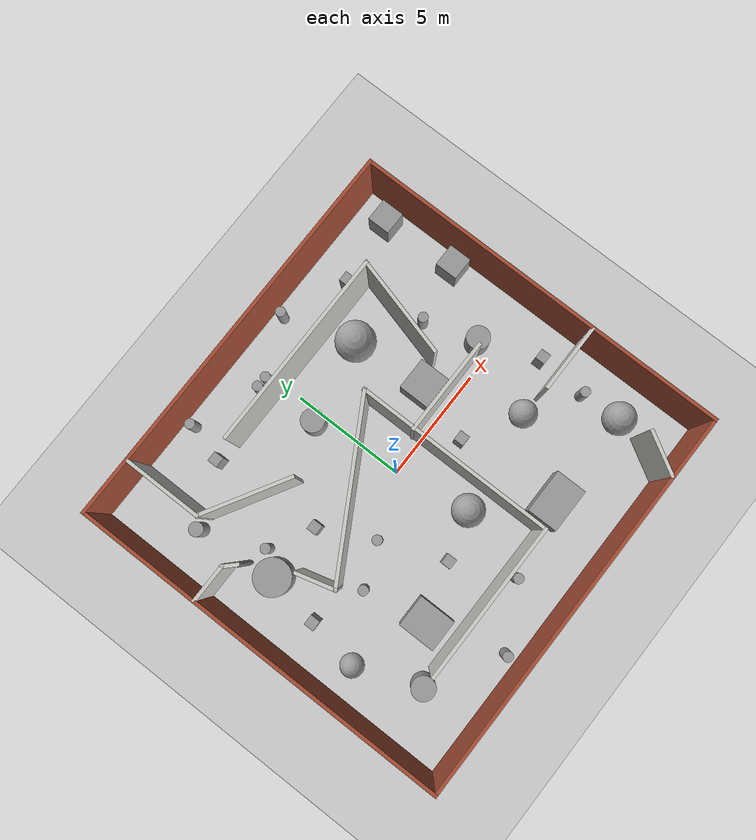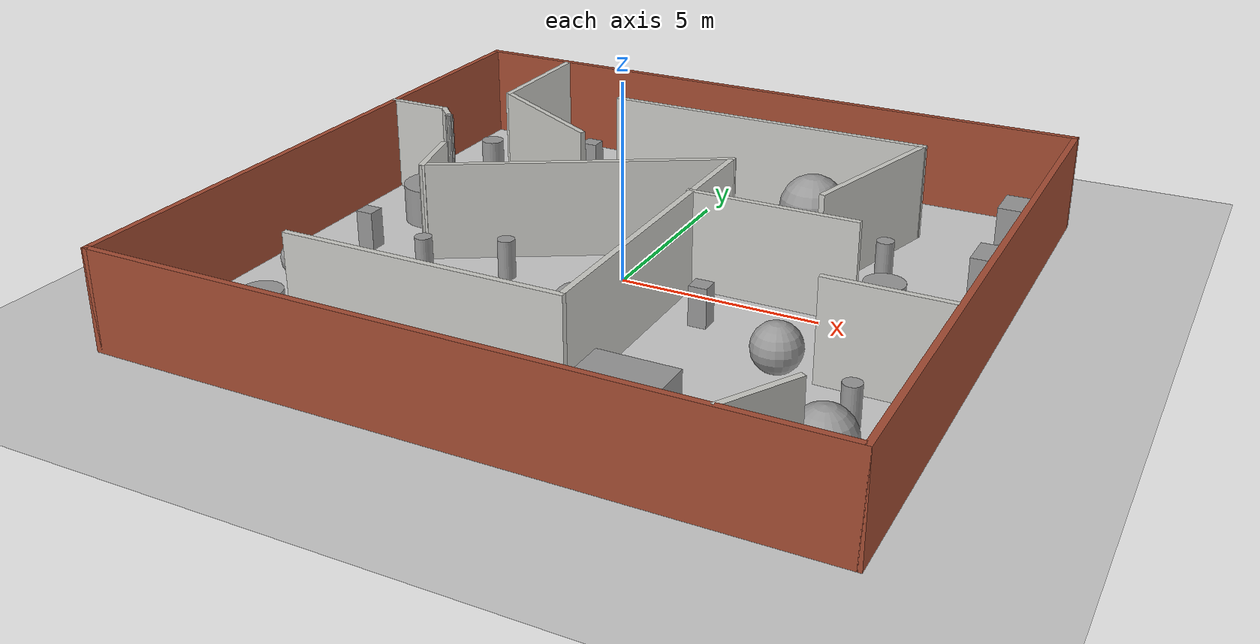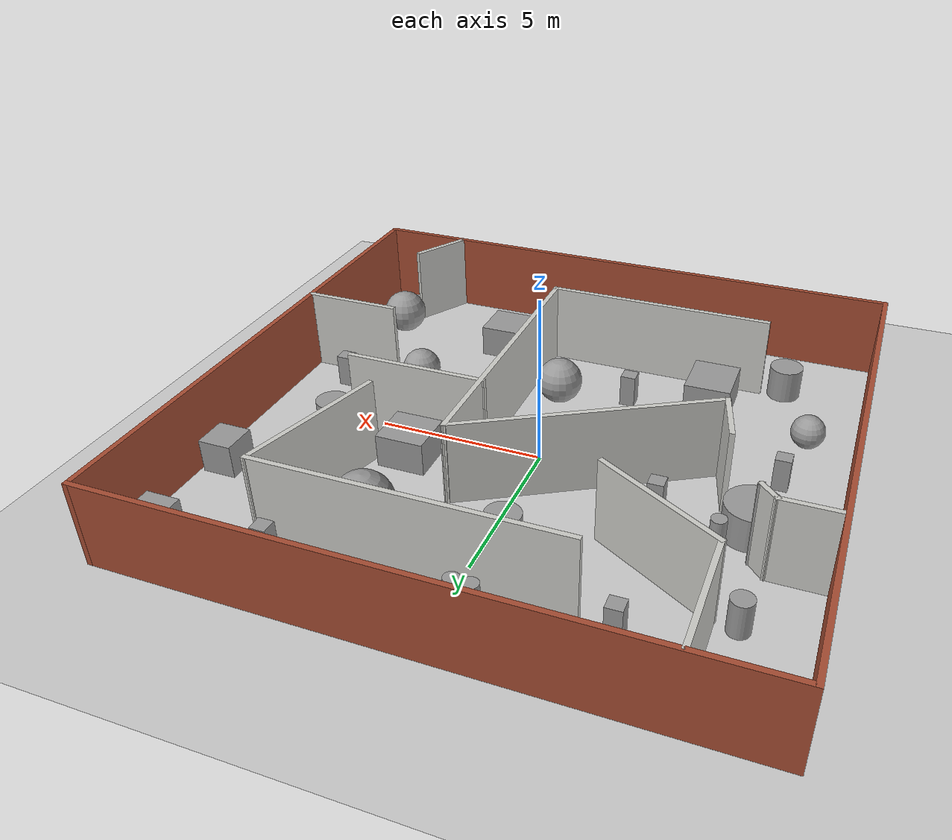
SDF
<sdf version="1.7">
 <world name="default">
  <light name="sun" type="directional">
   <pose>0 0 10 0 -0 0</pose>
   <diffuse>0.8 0.8 0.8 1</diffuse>
   <specular>0.2 0.2 0.2 1</specular>
   <attenuation>
    <range>1000</range>
    <constant>0.9</constant>
    <linear>0.01</linear>
    <quadratic>0.001</quadratic>
   </attenuation>
   <direction>-0.5 0.1 -0.9</direction>
   <spot><inner_angle>0</inner_angle><outer_angle>0</outer_angle><falloff>0</falloff></spot>
  </light>
  <model name="ground_plane">
   <static>1</static>
   <link name="link">
    <collision name="collision">
     <geometry><plane><normal>0 0 1</normal><size>100 100</size></plane></geometry>
     <surface>
      <contact><collide_bitmask>65535</collide_bitmask></contact>
      <friction><ode><mu>100</mu><mu2>50</mu2></ode></friction>
     </surface>
    </collision>
    <visual name="visual">
     <cast_shadows>0</cast_shadows>
     <geometry><plane><normal>0 0 1</normal><size>100 100</size></plane></geometry>
     <material>
      <script><uri>file://media/materials/scripts/gazebo.material</uri><name>Gazebo/Grey</name></script>
     </material>
    </visual>
   </link>
  </model>
  <gravity>0 0 -9.8</gravity>
  <magnetic_field>6e-06 2.3e-05 -4.2e-05</magnetic_field>
  <atmosphere type="adiabatic"/>
  <physics type="ode">
   <max_step_size>0.001</max_step_size>
   <real_time_factor>1</real_time_factor>
   <real_time_update_rate>1000</real_time_update_rate>
  </physics>
  <scene><ambient>0.4 0.4 0.4 1</ambient><background>0.7 0.7 0.7 1</background><shadows>1</shadows></scene>
  <spherical_coordinates>
   <surface_model>EARTH_WGS84</surface_model>
   <latitude_deg>0</latitude_deg>
   <longitude_deg>0</longitude_deg>
   <elevation>0</elevation>
   <heading_deg>0</heading_deg>
  </spherical_coordinates>
  <model name="maze">
   <pose>0.17089 -0.139064 0 0 -0 0</pose>
   <link name="Wall_22">
    <collision name="Wall_22_Collision">
     <geometry><box><size>16.75 0.15 2.5</size></box></geometry>
     <pose>0 0 1.25 0 -0 0</pose>
    </collision>
    <visual name="Wall_22_Visual">
     <pose>0 0 1.25 0 -0 0</pose>
     <geometry><box><size>16.75 0.15 2.5</size></box></geometry>
     <material>
      <script><uri>file://media/materials/scripts/gazebo.material</uri><name>Gazebo/Bricks</name></script>
      <ambient>1 1 1 1</ambient>
     </material>
     <meta><layer>0</layer></meta>
    </visual>
    <pose>-8.675 0 0 0 -0 -1.5708</pose>
   </link>
   <link name="Wall_23">
    <collision name="Wall_23_Collision">
     <geometry><box><size>17.5 0.15 2.5</size></box></geometry>
     <pose>0 0 1.25 0 -0 0</pose>
    </collision>
    <visual name="Wall_23_Visual">
     <pose>0 0 1.25 0 -0 0</pose>
     <geometry><box><size>17.5 0.15 2.5</size></box></geometry>
     <material>
      <script><uri>file://media/materials/scripts/gazebo.material</uri><name>Gazebo/Bricks</name></script>
      <ambient>1 1 1 1</ambient>
     </material>
     <meta><layer>0</layer></meta>
    </visual>
    <pose>-0 -8.3 0 0 -0 0</pose>
   </link>
   <link name="Wall_24">
    <collision name="Wall_24_Collision">
     <geometry><box><size>16.75 0.15 2.5</size></box></geometry>
     <pose>0 0 1.25 0 -0 0</pose>
    </collision>
    <visual name="Wall_24_Visual">
     <pose>0 0 1.25 0 -0 0</pose>
     <geometry><box><size>16.75 0.15 2.5</size></box></geometry>
     <material>
      <script><uri>file://media/materials/scripts/gazebo.material</uri><name>Gazebo/Bricks</name></script>
      <ambient>1 1 1 1</ambient>
     </material>
     <meta><layer>0</layer></meta>
    </visual>
    <pose>8.675 0 0 0 -0 1.5708</pose>
   </link>
   <link name="Wall_25">
    <collision name="Wall_25_Collision">
     <geometry><box><size>17.5 0.15 2.5</size></box></geometry>
     <pose>0 0 1.25 0 -0 0</pose>
    </collision>
    <visual name="Wall_25_Visual">
     <pose>0 0 1.25 0 -0 0</pose>
     <geometry><box><size>17.5 0.15 2.5</size></box></geometry>
     <material>
      <script><uri>file://media/materials/scripts/gazebo.material</uri><name>Gazebo/Bricks</name></script>
      <ambient>1 1 1 1</ambient>
     </material>
     <meta><layer>0</layer></meta>
    </visual>
    <pose>-0 8.3 0 0 -0 3.14159</pose>
   </link>
   <link name="Wall_27">
    <collision name="Wall_27_Collision">
     <geometry><box><size>3.5 0.15 2.5</size></box></geometry>
     <pose>0 0 1.25 0 -0 0</pose>
    </collision>
    <visual name="Wall_27_Visual">
     <pose>0 0 1.25 0 -0 0</pose>
     <geometry><box><size>3.5 0.15 2.5</size></box></geometry>
     <material>
      <script><uri>file://media/materials/scripts/gazebo.material</uri><name>Gazebo/CeilingTiled</name></script>
      <ambient>1 1 1 1</ambient>
     </material>
     <meta><layer>0</layer></meta>
    </visual>
    <pose>-6.16926 6.57143 0 0 -0 -1.5708</pose>
   </link>
   <link name="Wall_32">
    <collision name="Wall_32_Collision">
     <geometry><box><size>7.75 0.15 2.5</size></box></geometry>
     <pose>0 0 1.25 0 -0 0</pose>
    </collision>
    <visual name="Wall_32_Visual">
     <pose>0 0 1.25 0 -0 0</pose>
     <geometry><box><size>7.75 0.15 2.5</size></box></geometry>
     <material>
      <script><uri>file://media/materials/scripts/gazebo.material</uri><name>Gazebo/CeilingTiled</name></script>
      <ambient>1 1 1 1</ambient>
     </material>
     <meta><layer>0</layer></meta>
    </visual>
    <pose>-1.85377 1.00427 0 0 -0 -2.61799</pose>
   </link>
   <link name="Wall_39">
    <collision name="Wall_39_Collision">
     <geometry><box><size>8.75 0.15 2.5</size></box></geometry>
     <pose>0 0 1.25 0 -0 0</pose>
    </collision>
    <visual name="Wall_39_Visual">
     <pose>0 0 1.25 0 -0 0</pose>
     <geometry><box><size>8.75 0.15 2.5</size></box></geometry>
     <material>
      <script><uri>file://media/materials/scripts/gazebo.material</uri><name>Gazebo/CeilingTiled</name></script>
      <ambient>1 1 1 1</ambient>
     </material>
     <meta><layer>0</layer></meta>
    </visual>
    <pose>1.08014 5.91388 0 0 -0 0</pose>
   </link>
   <link name="Wall_41">
    <collision name="Wall_41_Collision">
     <geometry><box><size>4 0.15 2.5</size></box></geometry>
     <pose>0 0 1.25 0 -0 0</pose>
    </collision>
    <visual name="Wall_41_Visual">
     <pose>0 0 1.25 0 -0 0</pose>
     <geometry><box><size>4 0.15 2.5</size></box></geometry>
     <material>
      <script><uri>file://media/materials/scripts/gazebo.material</uri><name>Gazebo/CeilingTiled</name></script>
      <ambient>1 1 1 1</ambient>
     </material>
     <meta><layer>0</layer></meta>
    </visual>
    <pose>-4.50216 3.93393 0 0 -0 -0.523599</pose>
   </link>
   <link name="Wall_44">
    <collision name="Wall_44_Collision">
     <geometry><box><size>8.75 0.15 2.5</size></box></geometry>
     <pose>0 0 1.25 0 -0 0</pose>
    </collision>
    <visual name="Wall_44_Visual">
     <pose>0 0 1.25 0 -0 0</pose>
     <geometry><box><size>8.75 0.15 2.5</size></box></geometry>
     <material>
      <script><uri>file://media/materials/scripts/gazebo.material</uri><name>Gazebo/CeilingTiled</name></script>
      <ambient>1 1 1 1</ambient>
     </material>
     <meta><layer>0</layer></meta>
    </visual>
    <pose>1.43713 -1.39573 0 0 -0 -1.5708</pose>
   </link>
   <link name="Wall_45">
    <collision name="Wall_45_Collision">
     <geometry><box><size>7 0.15 2.5</size></box></geometry>
     <pose>0 0 1.25 0 -0 0</pose>
    </collision>
    <visual name="Wall_45_Visual">
     <pose>0 0 1.25 0 -0 0</pose>
     <geometry><box><size>7 0.15 2.5</size></box></geometry>
     <material>
      <script><uri>file://media/materials/scripts/gazebo.material</uri><name>Gazebo/CeilingTiled</name></script>
      <ambient>1 1 1 1</ambient>
     </material>
     <meta><layer>0</layer></meta>
    </visual>
    <pose>-1.98787 -5.69573 0 0 -0 3.14159</pose>
   </link>
   <link name="Wall_47">
    <collision name="Wall_47_Collision">
     <geometry><box><size>1.75 0.15 2.5</size></box></geometry>
     <pose>0 0 1.25 0 -0 0</pose>
    </collision>
    <visual name="Wall_47_Visual">
     <pose>0 0 1.25 0 -0 0</pose>
     <geometry><box><size>1.75 0.15 2.5</size></box></geometry>
     <material>
      <script><uri>file://media/materials/scripts/gazebo.material</uri><name>Gazebo/CeilingTiled</name></script>
      <ambient>1 1 1 1</ambient>
     </material>
     <meta><layer>0</layer></meta>
    </visual>
    <pose>-5.35172 -0.122989 0 0 -0 1.8326</pose>
   </link>
   <link name="Wall_49">
    <collision name="Wall_49_Collision">
     <geometry><box><size>1.75 0.15 2.5</size></box></geometry>
     <pose>0 0 1.25 0 -0 0</pose>
    </collision>
    <visual name="Wall_49_Visual">
     <pose>0 0 1.25 0 -0 0</pose>
     <geometry><box><size>1.75 0.15 2.5</size></box></geometry>
     <material>
      <script><uri>file://media/materials/scripts/gazebo.material</uri><name>Gazebo/CeilingTiled</name></script>
      <ambient>1 1 1 1</ambient>
     </material>
     <meta><layer>0</layer></meta>
    </visual>
    <pose>-7.86107 2.96653 0 0 -0 0</pose>
   </link>
   <link name="Wall_50">
    <collision name="Wall_50_Collision">
     <geometry><box><size>0.75 0.15 2.5</size></box></geometry>
     <pose>0 0 1.25 0 -0 0</pose>
    </collision>
    <visual name="Wall_50_Visual">
     <pose>0 0 1.25 0 -0 0</pose>
     <geometry><box><size>0.75 0.15 2.5</size></box></geometry>
     <material>
      <script><uri>file://media/materials/scripts/gazebo.material</uri><name>Gazebo/CeilingTiled</name></script>
      <ambient>1 1 1 1</ambient>
     </material>
     <meta><layer>0</layer></meta>
    </visual>
    <pose>-6.84893 2.75439 0 0 -0 -0.785398</pose>
   </link>
   <link name="Wall_51">
    <collision name="Wall_51_Collision">
     <geometry><box><size>0.16 0.15 2.5</size></box></geometry>
     <pose>0 0 1.25 0 -0 0</pose>
    </collision>
    <visual name="Wall_51_Visual">
     <pose>0 0 1.25 0 -0 0</pose>
     <geometry><box><size>0.16 0.15 2.5</size></box></geometry>
     <material>
      <script><uri>file://media/materials/scripts/gazebo.material</uri><name>Gazebo/Grey</name></script>
      <ambient>0 0 0 1</ambient>
     </material>
     <meta><layer>0</layer></meta>
    </visual>
    <pose>-6.6318 2.54226 0 0 -0 0</pose>
   </link>
   <link name="Wall_54">
    <collision name="Wall_54_Collision">
     <geometry><box><size>3 0.15 2.5</size></box></geometry>
     <pose>0 0 1.25 0 -0 0</pose>
    </collision>
    <visual name="Wall_54_Visual">
     <pose>0 0 1.25 0 -0 0</pose>
     <geometry><box><size>3 0.15 2.5</size></box></geometry>
     <material>
      <script><uri>file://media/materials/scripts/gazebo.material</uri><name>Gazebo/CeilingTiled</name></script>
      <ambient>1 1 1 1</ambient>
     </material>
     <meta><layer>0</layer></meta>
    </visual>
    <pose>7.20955 -2.53435 0 0 -0 3.14159</pose>
   </link>
   <link name="Wall_56">
    <collision name="Wall_56_Collision">
     <geometry><box><size>4.25 0.15 2.5</size></box></geometry>
     <pose>0 0 1.25 0 -0 0</pose>
    </collision>
    <visual name="Wall_56_Visual">
     <pose>0 0 1.25 0 -0 0</pose>
     <geometry><box><size>4.25 0.15 2.5</size></box></geometry>
     <material>
      <script><uri>file://media/materials/scripts/gazebo.material</uri><name>Gazebo/CeilingTiled</name></script>
      <ambient>1 1 1 1</ambient>
     </material>
     <meta><layer>0</layer></meta>
    </visual>
    <pose>3.44257 0.517046 0 0 -0 0</pose>
   </link>
   <link name="Wall_58">
    <collision name="Wall_58_Collision">
     <geometry><box><size>4.5 0.15 2.5</size></box></geometry>
     <pose>0 0 1.25 0 -0 0</pose>
    </collision>
    <visual name="Wall_58_Visual">
     <pose>0 0 1.25 0 -0 0</pose>
     <geometry><box><size>4.5 0.15 2.5</size></box></geometry>
     <material>
      <script><uri>file://media/materials/scripts/gazebo.material</uri><name>Gazebo/CeilingTiled</name></script>
      <ambient>1 1 1 1</ambient>
     </material>
     <meta><layer>0</layer></meta>
    </visual>
    <pose>4.81721 3.81299 0 0 -0 -1.8326</pose>
   </link>
   <link name="Wall_65">
    <collision name="Wall_65_Collision">
     <geometry><box><size>2 0.15 2.5</size></box></geometry>
     <pose>0 0 1.25 0 -0 0</pose>
    </collision>
    <visual name="Wall_65_Visual">
     <pose>0 0 1.25 0 -0 0</pose>
     <geometry><box><size>2 0.15 2.5</size></box></geometry>
     <material>
      <script><uri>file://media/materials/scripts/gazebo.material</uri><name>Gazebo/CeilingTiled</name></script>
      <ambient>1 1 1 1</ambient>
     </material>
     <meta><layer>0</layer></meta>
    </visual>
    <pose>6.39408 -7.4518 0 0 -0 1.0472</pose>
   </link>
   <static>1</static>
  </model>
  <model name="unit_cylinder">
   <pose>-6.26164 1.24907 0.499996 5e-06 5e-06 -6e-06</pose>
   <link name="link">
    <inertial>
     <mass>1</mass>
     <inertia><ixx>0.145833</ixx><ixy>0</ixy><ixz>0</ixz><iyy>0.145833</iyy><iyz>0</iyz><izz>0.125</izz></inertia>
    </inertial>
    <collision name="collision">
     <geometry><cylinder><radius>0.78674</radius><length>1</length></cylinder></geometry>
    </collision>
    <visual name="visual">
     <geometry><cylinder><radius>0.78674</radius><length>1</length></cylinder></geometry>
     <material>
      <script><name>Gazebo/Grey</name><uri>file://media/materials/scripts/gazebo.material</uri></script>
     </material>
    </visual>
   </link>
  </model>
  <model name="unit_cylinder_0">
   <pose>-2.61176 -1.0907 0.499994 0 -0 2e-06</pose>
   <link name="link">
    <inertial>
     <mass>1</mass>
     <inertia><ixx>0.145833</ixx><ixy>0</ixy><ixz>0</ixz><iyy>0.145833</iyy><iyz>0</iyz><izz>0.125</izz></inertia>
    </inertial>
    <collision name="collision">
     <geometry><cylinder><radius>0.216606</radius><length>1</length></cylinder></geometry>
    </collision>
    <visual name="visual">
     <geometry><cylinder><radius>0.216606</radius><length>1</length></cylinder></geometry>
     <material>
      <script><name>Gazebo/Grey</name><uri>file://media/materials/scripts/gazebo.material</uri></script>
     </material>
    </visual>
   </link>
  </model>
  <model name="unit_box_0">
   <pose>-3.95181 -4.59741 0.499994 -0 9e-06 -0.000152</pose>
   <link name="link">
    <inertial>
     <mass>1</mass>
     <inertia>
      <ixx>0.166667</ixx>
      <ixy>0</ixy>
      <ixz>0</ixz>
      <iyy>0.166667</iyy>
      <iyz>0</iyz>
      <izz>0.166667</izz>
     </inertia>
    </inertial>
    <collision name="collision"><geometry><box><size>1.40062 1.63389 1</size></box></geometry></collision>
    <visual name="visual">
     <geometry><box><size>1.40062 1.63389 1</size></box></geometry>
     <material>
      <script><name>Gazebo/Grey</name><uri>file://media/materials/scripts/gazebo.material</uri></script>
     </material>
    </visual>
   </link>
  </model>
  <model name="unit_sphere">
   <pose>0.540268 -3.21657 0.69319 0 -0 0</pose>
   <link name="link">
    <inertial>
     <mass>1</mass>
     <inertia><ixx>0.1</ixx><ixy>0</ixy><ixz>0</ixz><iyy>0.1</iyy><iyz>0</iyz><izz>0.1</izz></inertia>
    </inertial>
    <collision name="collision"><geometry><sphere><radius>0.69319</radius></sphere></geometry></collision>
    <visual name="visual">
     <geometry><sphere><radius>0.69319</radius></sphere></geometry>
     <material>
      <script><name>Gazebo/Grey</name><uri>file://media/materials/scripts/gazebo.material</uri></script>
     </material>
    </visual>
   </link>
  </model>
  <model name="unit_cylinder_1">
   <pose>-5.99181 -6.00243 0.499994 -3e-06 -1e-06 -0</pose>
   <link name="link">
    <inertial>
     <mass>1</mass>
     <inertia><ixx>0.145833</ixx><ixy>0</ixy><ixz>0</ixz><iyy>0.145833</iyy><iyz>0</iyz><izz>0.125</izz></inertia>
    </inertial>
    <collision name="collision">
     <geometry><cylinder><radius>0.5</radius><length>1</length></cylinder></geometry>
    </collision>
    <visual name="visual">
     <geometry><cylinder><radius>0.5</radius><length>1</length></cylinder></geometry>
     <material>
      <script><name>Gazebo/Grey</name><uri>file://media/materials/scripts/gazebo.material</uri></script>
     </material>
    </visual>
   </link>
  </model>
  <model name="unit_box">
   <pose>2.94901 -5.73381 0.5 0 -0 0</pose>
   <link name="link">
    <inertial>
     <mass>1</mass>
     <inertia>
      <ixx>0.166667</ixx>
      <ixy>0</ixy>
      <ixz>0</ixz>
      <iyy>0.166667</iyy>
      <iyz>0</iyz>
      <izz>0.166667</izz>
     </inertia>
    </inertial>
    <collision name="collision"><geometry><box><size>1.96762 1.36002 1</size></box></geometry></collision>
    <visual name="visual">
     <geometry><box><size>1.96762 1.36002 1</size></box></geometry>
     <material>
      <script><name>Gazebo/Grey</name><uri>file://media/materials/scripts/gazebo.material</uri></script>
     </material>
    </visual>
   </link>
  </model>
  <model name="unit_sphere_0">
   <pose>5.00015 -2.59977 0.590975 0 -0 0</pose>
   <link name="link">
    <inertial>
     <mass>1</mass>
     <inertia><ixx>0.1</ixx><ixy>0</ixy><ixz>0</ixz><iyy>0.1</iyy><iyz>0</iyz><izz>0.1</izz></inertia>
    </inertial>
    <collision name="collision"><geometry><sphere><radius>0.590975</radius></sphere></geometry></collision>
    <visual name="visual">
     <geometry><sphere><radius>0.590975</radius></sphere></geometry>
     <material>
      <script><name>Gazebo/Grey</name><uri>file://media/materials/scripts/gazebo.material</uri></script>
     </material>
    </visual>
   </link>
  </model>
  <model name="unit_box_1">
   <pose>3.46997 1.26692 0.499995 0 7e-06 -5.8e-05</pose>
   <link name="link">
    <inertial>
     <mass>1</mass>
     <inertia>
      <ixx>0.166667</ixx>
      <ixy>0</ixy>
      <ixz>0</ixz>
      <iyy>0.166667</iyy>
      <iyz>0</iyz>
      <izz>0.166667</izz>
     </inertia>
    </inertial>
    <collision name="collision"><geometry><box><size>1.43408 1.37249 1</size></box></geometry></collision>
    <visual name="visual">
     <geometry><box><size>1.43408 1.37249 1</size></box></geometry>
     <material>
      <script><name>Gazebo/Grey</name><uri>file://media/materials/scripts/gazebo.material</uri></script>
     </material>
    </visual>
   </link>
  </model>
  <model name="unit_cylinder_2">
   <pose>6.27871 0.698681 0.499996 3e-06 1e-06 -0</pose>
   <link name="link">
    <inertial>
     <mass>1</mass>
     <inertia><ixx>0.145833</ixx><ixy>0</ixy><ixz>0</ixz><iyy>0.145833</iyy><iyz>0</iyz><izz>0.125</izz></inertia>
    </inertial>
    <collision name="collision">
     <geometry><cylinder><radius>0.5</radius><length>1</length></cylinder></geometry>
    </collision>
    <visual name="visual">
     <geometry><cylinder><radius>0.5</radius><length>1</length></cylinder></geometry>
     <material>
      <script><name>Gazebo/Grey</name><uri>file://media/materials/scripts/gazebo.material</uri></script>
     </material>
    </visual>
   </link>
  </model>
  <model name="unit_box_2">
   <pose>8.14436 3.40744 0.499995 1e-05 -0 0</pose>
   <link name="link">
    <inertial>
     <mass>1</mass>
     <inertia>
      <ixx>0.166667</ixx>
      <ixy>0</ixy>
      <ixz>0</ixz>
      <iyy>0.166667</iyy>
      <iyz>0</iyz>
      <izz>0.166667</izz>
     </inertia>
    </inertial>
    <collision name="collision"><geometry><box><size>1 1 1</size></box></geometry></collision>
    <visual name="visual">
     <geometry><box><size>1 1 1</size></box></geometry>
     <material>
      <script><name>Gazebo/Grey</name><uri>file://media/materials/scripts/gazebo.material</uri></script>
     </material>
    </visual>
   </link>
  </model>
  <model name="unit_sphere_1">
   <pose>3.14299 4.52635 0.85364 0 -0 0</pose>
   <link name="link">
    <inertial>
     <mass>1</mass>
     <inertia><ixx>0.1</ixx><ixy>0</ixy><ixz>0</ixz><iyy>0.1</iyy><iyz>0</iyz><izz>0.1</izz></inertia>
    </inertial>
    <collision name="collision"><geometry><sphere><radius>0.85364</radius></sphere></geometry></collision>
    <visual name="visual">
     <geometry><sphere><radius>0.85364</radius></sphere></geometry>
     <material>
      <script><name>Gazebo/Grey</name><uri>file://media/materials/scripts/gazebo.material</uri></script>
     </material>
    </visual>
   </link>
  </model>
  <model name="unit_cylinder_0_clone">
   <pose>-4.48044 -1.86724 0.499991 0 -0 2e-06</pose>
   <link name="link">
    <inertial>
     <mass>1</mass>
     <inertia><ixx>0.145833</ixx><ixy>0</ixy><ixz>0</ixz><iyy>0.145833</iyy><iyz>0</iyz><izz>0.125</izz></inertia>
    </inertial>
    <collision name="collision">
     <geometry><cylinder><radius>0.216606</radius><length>1</length></cylinder></geometry>
    </collision>
    <visual name="visual">
     <geometry><cylinder><radius>0.216606</radius><length>1</length></cylinder></geometry>
     <material>
      <script><name>Gazebo/Grey</name><uri>file://media/materials/scripts/gazebo.material</uri></script>
     </material>
    </visual>
   </link>
  </model>
  <model name="unit_sphere_2">
   <pose>-7.07174 -3.31407 0.5 0 -0 0</pose>
   <link name="link">
    <inertial>
     <mass>1</mass>
     <inertia><ixx>0.1</ixx><ixy>0</ixy><ixz>0</ixz><iyy>0.1</iyy><iyz>0</iyz><izz>0.1</izz></inertia>
    </inertial>
    <collision name="collision"><geometry><sphere><radius>0.5</radius></sphere></geometry></collision>
    <visual name="visual">
     <geometry><sphere><radius>0.5</radius></sphere></geometry>
     <material>
      <script><name>Gazebo/Grey</name><uri>file://media/materials/scripts/gazebo.material</uri></script>
     </material>
    </visual>
   </link>
  </model>
  <model name="unit_cylinder_0_clone_1">
   <pose>-3.03403 -7.84671 0.499994 0 -0 2e-06</pose>
   <link name="link">
    <inertial>
     <mass>1</mass>
     <inertia><ixx>0.145833</ixx><ixy>0</ixy><ixz>0</ixz><iyy>0.145833</iyy><iyz>0</iyz><izz>0.125</izz></inertia>
    </inertial>
    <collision name="collision">
     <geometry><cylinder><radius>0.216606</radius><length>1</length></cylinder></geometry>
    </collision>
    <visual name="visual">
     <geometry><cylinder><radius>0.216606</radius><length>1</length></cylinder></geometry>
     <material>
      <script><name>Gazebo/Grey</name><uri>file://media/materials/scripts/gazebo.material</uri></script>
     </material>
    </visual>
   </link>
  </model>
  <model name="unit_cylinder_0_clone_2">
   <pose>-0.392573 -6.36925 0.499991 0 -0 3e-06</pose>
   <link name="link">
    <inertial>
     <mass>1</mass>
     <inertia><ixx>0.145833</ixx><ixy>0</ixy><ixz>0</ixz><iyy>0.145833</iyy><iyz>0</iyz><izz>0.125</izz></inertia>
    </inertial>
    <collision name="collision">
     <geometry><cylinder><radius>0.216606</radius><length>1</length></cylinder></geometry>
    </collision>
    <visual name="visual">
     <geometry><cylinder><radius>0.216606</radius><length>1</length></cylinder></geometry>
     <material>
      <script><name>Gazebo/Grey</name><uri>file://media/materials/scripts/gazebo.material</uri></script>
     </material>
    </visual>
   </link>
  </model>
  <model name="unit_box_3">
   <pose>-6.67284 -1.06647 0.5 0 0 -4e-06</pose>
   <link name="link">
    <inertial>
     <mass>1</mass>
     <inertia>
      <ixx>0.166667</ixx>
      <ixy>0</ixy>
      <ixz>0</ixz>
      <iyy>0.166667</iyy>
      <iyz>0</iyz>
      <izz>0.166667</izz>
     </inertia>
    </inertial>
    <collision name="collision"><geometry><box><size>0.452696 0.441608 1</size></box></geometry></collision>
    <visual name="visual">
     <geometry><box><size>0.452696 0.441608 1</size></box></geometry>
     <material>
      <script><name>Gazebo/Grey</name><uri>file://media/materials/scripts/gazebo.material</uri></script>
     </material>
    </visual>
   </link>
  </model>
  <model name="unit_box_3_clone">
   <pose>-1.53409 -3.81979 0.5 0 0 -3.6e-05</pose>
   <link name="link">
    <inertial>
     <mass>1</mass>
     <inertia>
      <ixx>0.166667</ixx>
      <ixy>0</ixy>
      <ixz>0</ixz>
      <iyy>0.166667</iyy>
      <iyz>0</iyz>
      <izz>0.166667</izz>
     </inertia>
    </inertial>
    <collision name="collision"><geometry><box><size>0.452696 0.441607 1</size></box></geometry></collision>
    <visual name="visual">
     <geometry><box><size>0.452696 0.441607 1</size></box></geometry>
     <material>
      <script><name>Gazebo/Grey</name><uri>file://media/materials/scripts/gazebo.material</uri></script>
     </material>
    </visual>
   </link>
  </model>
  <model name="unit_box_3_clone_0">
   <pose>-3.71953 1.16466 0.5 0 0 -1.4e-05</pose>
   <link name="link">
    <inertial>
     <mass>1</mass>
     <inertia>
      <ixx>0.166667</ixx>
      <ixy>0</ixy>
      <ixz>0</ixz>
      <iyy>0.166667</iyy>
      <iyz>0</iyz>
      <izz>0.166667</izz>
     </inertia>
    </inertial>
    <collision name="collision"><geometry><box><size>0.452696 0.441607 1</size></box></geometry></collision>
    <visual name="visual">
     <geometry><box><size>0.452696 0.441607 1</size></box></geometry>
     <material>
      <script><name>Gazebo/Grey</name><uri>file://media/materials/scripts/gazebo.material</uri></script>
     </material>
    </visual>
   </link>
  </model>
  <model name="unit_sphere_3">
   <pose>7.19334 -5.7629 0.69727 0 -0 0</pose>
   <link name="link">
    <inertial>
     <mass>1</mass>
     <inertia><ixx>0.1</ixx><ixy>0</ixy><ixz>0</ixz><iyy>0.1</iyy><iyz>0</iyz><izz>0.1</izz></inertia>
    </inertial>
    <collision name="collision"><geometry><sphere><radius>0.69727</radius></sphere></geometry></collision>
    <visual name="visual">
     <geometry><sphere><radius>0.69727</radius></sphere></geometry>
     <material>
      <script><name>Gazebo/Grey</name><uri>file://media/materials/scripts/gazebo.material</uri></script>
     </material>
    </visual>
   </link>
  </model>
  <model name="unit_box_3_clone_1">
   <pose>2.63053 -1.25714 0.5 0 0 -3.3e-05</pose>
   <link name="link">
    <inertial>
     <mass>1</mass>
     <inertia>
      <ixx>0.166667</ixx>
      <ixy>0</ixy>
      <ixz>0</ixz>
      <iyy>0.166667</iyy>
      <iyz>0</iyz>
      <izz>0.166667</izz>
     </inertia>
    </inertial>
    <collision name="collision"><geometry><box><size>0.452696 0.441607 1</size></box></geometry></collision>
    <visual name="visual">
     <geometry><box><size>0.452696 0.441607 1</size></box></geometry>
     <material>
      <script><name>Gazebo/Grey</name><uri>file://media/materials/scripts/gazebo.material</uri></script>
     </material>
    </visual>
   </link>
  </model>
  <model name="unit_cylinder_0_clone_3">
   <pose>5.57498 2.96511 0.499991 0 -0 2e-06</pose>
   <link name="link">
    <inertial>
     <mass>1</mass>
     <inertia><ixx>0.145833</ixx><ixy>0</ixy><ixz>0</ixz><iyy>0.145833</iyy><iyz>0</iyz><izz>0.125</izz></inertia>
    </inertial>
    <collision name="collision">
     <geometry><cylinder><radius>0.216606</radius><length>1</length></cylinder></geometry>
    </collision>
    <visual name="visual">
     <geometry><cylinder><radius>0.216606</radius><length>1</length></cylinder></geometry>
     <material>
      <script><name>Gazebo/Grey</name><uri>file://media/materials/scripts/gazebo.material</uri></script>
     </material>
    </visual>
   </link>
  </model>
  <model name="unit_box_3_clone_clone">
   <pose>7.25319 -1.82455 0.499998 -3e-06 4e-06 -6.7e-05</pose>
   <link name="link">
    <inertial>
     <mass>1</mass>
     <inertia>
      <ixx>0.166667</ixx>
      <ixy>0</ixy>
      <ixz>0</ixz>
      <iyy>0.166667</iyy>
      <iyz>0</iyz>
      <izz>0.166667</izz>
     </inertia>
    </inertial>
    <collision name="collision"><geometry><box><size>0.452696 0.441607 1</size></box></geometry></collision>
    <visual name="visual">
     <geometry><box><size>0.452696 0.441607 1</size></box></geometry>
     <material>
      <script><name>Gazebo/Grey</name><uri>file://media/materials/scripts/gazebo.material</uri></script>
     </material>
    </visual>
   </link>
  </model>
  <model name="unit_box_4">
   <pose>7.96713 6.75057 0.499995 -1e-05 -0 0</pose>
   <link name="link">
    <inertial>
     <mass>1</mass>
     <inertia>
      <ixx>0.166667</ixx>
      <ixy>0</ixy>
      <ixz>0</ixz>
      <iyy>0.166667</iyy>
      <iyz>0</iyz>
      <izz>0.166667</izz>
     </inertia>
    </inertial>
    <collision name="collision"><geometry><box><size>1 1 1</size></box></geometry></collision>
    <visual name="visual">
     <geometry><box><size>1 1 1</size></box></geometry>
     <material>
      <script><name>Gazebo/Grey</name><uri>file://media/materials/scripts/gazebo.material</uri></script>
     </material>
    </visual>
   </link>
  </model>
  <model name="unit_box_3_clone_clone_0">
   <pose>4.93555 6.37706 0.5 0 0 -9.1e-05</pose>
   <link name="link">
    <inertial>
     <mass>1</mass>
     <inertia>
      <ixx>0.166667</ixx>
      <ixy>0</ixy>
      <ixz>0</ixz>
      <iyy>0.166667</iyy>
      <iyz>0</iyz>
      <izz>0.166667</izz>
     </inertia>
    </inertial>
    <collision name="collision"><geometry><box><size>0.452696 0.441607 1</size></box></geometry></collision>
    <visual name="visual">
     <geometry><box><size>0.452696 0.441607 1</size></box></geometry>
     <material>
      <script><name>Gazebo/Grey</name><uri>file://media/materials/scripts/gazebo.material</uri></script>
     </material>
    </visual>
   </link>
  </model>
  <model name="unit_cylinder_0_clone_4">
   <pose>2.22177 7.64884 0.499996 0 -0 2e-06</pose>
   <link name="link">
    <inertial>
     <mass>1</mass>
     <inertia><ixx>0.145833</ixx><ixy>0</ixy><ixz>0</ixz><iyy>0.145833</iyy><iyz>0</iyz><izz>0.125</izz></inertia>
    </inertial>
    <collision name="collision">
     <geometry><cylinder><radius>0.216606</radius><length>1</length></cylinder></geometry>
    </collision>
    <visual name="visual">
     <geometry><cylinder><radius>0.216606</radius><length>1</length></cylinder></geometry>
     <material>
      <script><name>Gazebo/Grey</name><uri>file://media/materials/scripts/gazebo.material</uri></script>
     </material>
    </visual>
   </link>
  </model>
  <model name="unit_cylinder_0_clone_5">
   <pose>-0.237535 6.45987 0.499996 0 -0 2e-06</pose>
   <link name="link">
    <inertial>
     <mass>1</mass>
     <inertia><ixx>0.145833</ixx><ixy>0</ixy><ixz>0</ixz><iyy>0.145833</iyy><iyz>0</iyz><izz>0.125</izz></inertia>
    </inertial>
    <collision name="collision">
     <geometry><cylinder><radius>0.216606</radius><length>1</length></cylinder></geometry>
    </collision>
    <visual name="visual">
     <geometry><cylinder><radius>0.216606</radius><length>1</length></cylinder></geometry>
     <material>
      <script><name>Gazebo/Grey</name><uri>file://media/materials/scripts/gazebo.material</uri></script>
     </material>
    </visual>
   </link>
  </model>
  <model name="unit_cylinder_0_clone_6">
   <pose>-0.723272 6.47144 0.499991 0 -0 3e-06</pose>
   <link name="link">
    <inertial>
     <mass>1</mass>
     <inertia><ixx>0.145833</ixx><ixy>0</ixy><ixz>0</ixz><iyy>0.145833</iyy><iyz>0</iyz><izz>0.125</izz></inertia>
    </inertial>
    <collision name="collision">
     <geometry><cylinder><radius>0.216606</radius><length>1</length></cylinder></geometry>
    </collision>
    <visual name="visual">
     <geometry><cylinder><radius>0.216606</radius><length>1</length></cylinder></geometry>
     <material>
      <script><name>Gazebo/Grey</name><uri>file://media/materials/scripts/gazebo.material</uri></script>
     </material>
    </visual>
   </link>
  </model>
  <model name="unit_cylinder_0_clone_7">
   <pose>-3.56047 7.63702 0.499996 0 -0 2e-06</pose>
   <link name="link">
    <inertial>
     <mass>1</mass>
     <inertia><ixx>0.145833</ixx><ixy>0</ixy><ixz>0</ixz><iyy>0.145833</iyy><iyz>0</iyz><izz>0.125</izz></inertia>
    </inertial>
    <collision name="collision">
     <geometry><cylinder><radius>0.216606</radius><length>1</length></cylinder></geometry>
    </collision>
    <visual name="visual">
     <geometry><cylinder><radius>0.216606</radius><length>1</length></cylinder></geometry>
     <material>
      <script><name>Gazebo/Grey</name><uri>file://media/materials/scripts/gazebo.material</uri></script>
     </material>
    </visual>
   </link>
  </model>
  <model name="unit_box_3_clone_1_clone">
   <pose>-4.02911 5.92643 0.500001 -2e-06 1e-06 -5.1e-05</pose>
   <link name="link">
    <inertial>
     <mass>1</mass>
     <inertia>
      <ixx>0.166667</ixx>
      <ixy>0</ixy>
      <ixz>0</ixz>
      <iyy>0.166667</iyy>
      <iyz>0</iyz>
      <izz>0.166667</izz>
     </inertia>
    </inertial>
    <collision name="collision"><geometry><box><size>0.452696 0.441607 1</size></box></geometry></collision>
    <visual name="visual">
     <geometry><box><size>0.452696 0.441607 1</size></box></geometry>
     <material>
      <script><name>Gazebo/Grey</name><uri>file://media/materials/scripts/gazebo.material</uri></script>
     </material>
    </visual>
   </link>
  </model>
  <model name="unit_cylinder_0_clone_7_clone">
   <pose>-6.6387 4.7847 0.499992 -0 1e-06 3e-06</pose>
   <link name="link">
    <inertial>
     <mass>1</mass>
     <inertia><ixx>0.145833</ixx><ixy>0</ixy><ixz>0</ixz><iyy>0.145833</iyy><iyz>0</iyz><izz>0.125</izz></inertia>
    </inertial>
    <collision name="collision">
     <geometry><cylinder><radius>0.303541</radius><length>1</length></cylinder></geometry>
    </collision>
    <visual name="visual">
     <geometry><cylinder><radius>0.303541</radius><length>1</length></cylinder></geometry>
     <material>
      <script><name>Gazebo/Grey</name><uri>file://media/materials/scripts/gazebo.material</uri></script>
     </material>
    </visual>
   </link>
  </model>
  <model name="unit_cylinder_0_clone_7_clone_0">
   <pose>-5.56004 2.16832 0.5 0 -0 1e-06</pose>
   <link name="link">
    <inertial>
     <mass>1</mass>
     <inertia><ixx>0.145833</ixx><ixy>0</ixy><ixz>0</ixz><iyy>0.145833</iyy><iyz>0</iyz><izz>0.125</izz></inertia>
    </inertial>
    <collision name="collision">
     <geometry><cylinder><radius>0.216606</radius><length>1</length></cylinder></geometry>
    </collision>
    <visual name="visual">
     <geometry><cylinder><radius>0.216606</radius><length>1</length></cylinder></geometry>
     <material>
      <script><name>Gazebo/Grey</name><uri>file://media/materials/scripts/gazebo.material</uri></script>
     </material>
    </visual>
   </link>
  </model>
  <model name="unit_cylinder_3">
   <pose>-0.453811 3.86577 0.499998 3e-06 -4e-06 0</pose>
   <link name="link">
    <inertial>
     <mass>1</mass>
     <inertia><ixx>0.145833</ixx><ixy>0</ixy><ixz>0</ixz><iyy>0.145833</iyy><iyz>0</iyz><izz>0.125</izz></inertia>
    </inertial>
    <collision name="collision">
     <geometry><cylinder><radius>0.5</radius><length>1</length></cylinder></geometry>
    </collision>
    <visual name="visual">
     <geometry><cylinder><radius>0.5</radius><length>1</length></cylinder></geometry>
     <material>
      <script><name>Gazebo/Grey</name><uri>file://media/materials/scripts/gazebo.material</uri></script>
     </material>
    </visual>
   </link>
  </model>
  <model name="unit_cylinder_0_clone_7_clone_1">
   <pose>7.14437 -4.02196 0.499996 0 -0 2e-06</pose>
   <link name="link">
    <inertial>
     <mass>1</mass>
     <inertia><ixx>0.145833</ixx><ixy>0</ixy><ixz>0</ixz><iyy>0.145833</iyy><iyz>0</iyz><izz>0.125</izz></inertia>
    </inertial>
    <collision name="collision">
     <geometry><cylinder><radius>0.216606</radius><length>1</length></cylinder></geometry>
    </collision>
    <visual name="visual">
     <geometry><cylinder><radius>0.216606</radius><length>1</length></cylinder></geometry>
     <material>
      <script><name>Gazebo/Grey</name><uri>file://media/materials/scripts/gazebo.material</uri></script>
     </material>
    </visual>
   </link>
  </model>
 </world>
</sdf>
